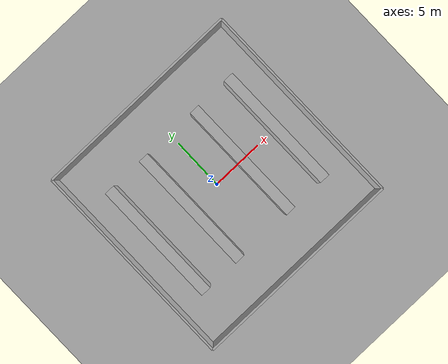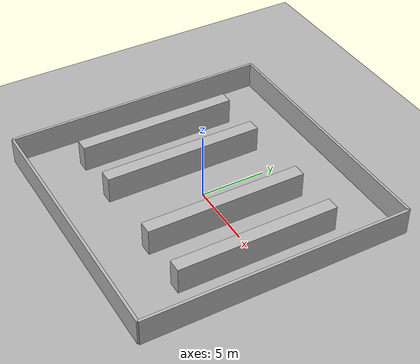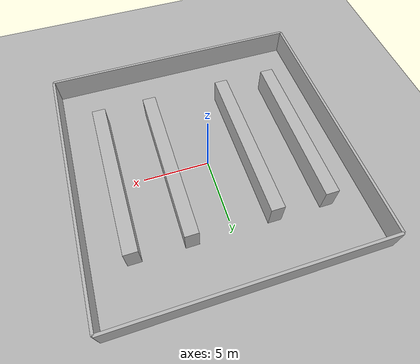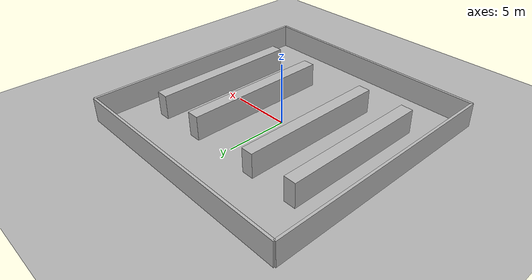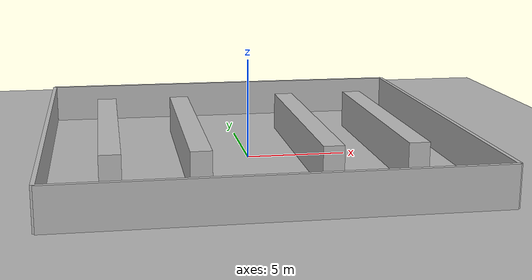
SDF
<?xml version="1.0" ?>
<sdf version="1.9">

  <world name="warehouse">

    <!-- PHYSICS                                               -->

    <physics name="default_physics" type="ode">
      <max_step_size>0.001</max_step_size>
      <real_time_factor>1.0</real_time_factor>
      <real_time_update_rate>1000</real_time_update_rate>
    </physics>

    <!-- Gazebo Sensors system -->
    <plugin
      filename="gz-sim-sensors-system"
      name="gz::sim::systems::Sensors">
    </plugin>

    <!-- Gazebo IMU system -->
    <plugin
      filename="gz-sim-imu-system"
      name="gz::sim::systems::Imu">
    </plugin>

    <!-- LIGHTING                                               -->

    <light name="sun" type="directional">
      <pose>-6 0 1 0 0 0</pose>

      <cast_shadows>true</cast_shadows>

      <diffuse>1 1 1 1</diffuse>
      <specular>0.5 0.5 0.5 1</specular>

      <attenuation>
        <range>1000</range>
        <constant>0.5</constant>
        <linear>0.01</linear>
        <quadratic>0.001</quadratic>
      </attenuation>

      <direction>-0.3 0.3 -1</direction>
    </light>

    <light name="warehouse_light_1" type="point">
      <pose>-6 0 1 0 0 0</pose>
      <diffuse>1 1 1 1</diffuse>
      <specular>0.3 0.3 0.3 1</specular>

      <attenuation>
        <range>30</range>
        <constant>0.5</constant>
        <linear>0.01</linear>
        <quadratic>0.001</quadratic>
      </attenuation>

      <cast_shadows>true</cast_shadows>
    </light>

    <!-- GROUND                                                 -->

    <model name="ground">

      <static>true</static>

      <link name="link">

        <collision name="collision">

          <geometry>
            <plane>
              <normal>0 0 1</normal>
              <size>30 30</size>
            </plane>
          </geometry>

        </collision>

        <visual name="visual">

          <geometry>
            <plane>
              <normal>0 0 1</normal>
              <size>30 30</size>
            </plane>
          </geometry>

          <material>
            <ambient>0.7 0.7 0.7 1</ambient>
            <diffuse>0.7 0.7 0.7 1</diffuse>
            <specular>0.1 0.1 0.1 1</specular>
          </material>

        </visual>

      </link>

    </model>

    <!-- NORTH WALL                                             -->

    <model name="wall_north">

      <static>true</static>

<pose>0 10 1 0 0 0</pose>
      <link name="link">

        <collision name="collision">

          <geometry>
            <box>
              <size>20 0.2 2</size>
            </box>
          </geometry>

        </collision>

        <visual name="visual">

          <geometry>
            <box>
              <size>20 0.2 2</size>
            </box>
          </geometry>

        </visual>

      </link>

    </model>

    <!-- SOUTH WALL                                             -->

    <model name="wall_south">

      <static>true</static>

     <pose>0 -10 1 0 0 0</pose>

      <link name="link">

        <collision name="collision">

          <geometry>
            <box>
              <size>20 0.2 2</size>
            </box>
          </geometry>

        </collision>

        <visual name="visual">

          <geometry>
            <box>
              <size>20 0.2 2</size>
            </box>
          </geometry>

        </visual>

      </link>

    </model>

    <!-- EAST WALL                                              -->

    <model name="wall_east">

      <static>true</static>

      <pose>10 0 1 0 0 0</pose>

      <link name="link">

        <collision name="collision">

          <geometry>
            <box>
              <size>0.2 20 2</size>
            </box>
          </geometry>

        </collision>

        <visual name="visual">

          <geometry>
            <box>
              <size>0.2 20 2</size>
            </box>
          </geometry>

        </visual>

      </link>

    </model>

    <!-- WEST WALL                                              -->

    <model name="wall_west">

      <static>true</static>

      <pose>-10 0 1 0 0 0</pose>

      <link name="link">

        <collision name="collision">

          <geometry>
            <box>
              <size>0.2 20 2</size>
            </box>
          </geometry>

        </collision>

        <visual name="visual">

          <geometry>
            <box>
              <size>0.2 20 2</size>
            </box>
          </geometry>

        </visual>

      </link>

    </model>

    <!-- WAREHOUSE SHELF ROW 1                                 -->

    <model name="shelf_row_1">

      <static>true</static>

      <pose>-7 0 1 0 0 0</pose>

      <link name="link">

        <collision name="collision">

          <geometry>
            <box>
              <size>1 12 2</size>
            </box>
          </geometry>

        </collision>

        <visual name="visual">

          <geometry>
            <box>
              <size>1 12 2</size>
            </box>
          </geometry>

        </visual>

      </link>

    </model>

    <!-- WAREHOUSE SHELF ROW 2                                 -->

    <model name="shelf_row_2">

      <static>true</static>

      <pose>-3 0 1 0 0 0</pose>

      <link name="link">

        <collision name="collision">

          <geometry>
            <box>
              <size>1 12 2</size>
            </box>
          </geometry>

        </collision>

        <visual name="visual">

          <geometry>
            <box>
              <size>1 12 2</size>
            </box>
          </geometry>

        </visual>

      </link>

    </model>

    <!-- WAREHOUSE SHELF ROW 3                                 -->

    <model name="shelf_row_3">

      <static>true</static>

      <pose>3 0 1 0 0 0</pose>

      <link name="link">

        <collision name="collision">

          <geometry>
            <box>
              <size>1 12 2</size>
            </box>
          </geometry>

        </collision>

        <visual name="visual">

          <geometry>
            <box>
              <size>1 12 2</size>
            </box>
          </geometry>

        </visual>

      </link>

    </model>

    <!-- WAREHOUSE SHELF ROW 4                                 -->

    <model name="shelf_row_4">

      <static>true</static>

      <pose>7 0 1 0 0 0</pose>

      <link name="link">

        <collision name="collision">

          <geometry>
            <box>
              <size>1 12 2</size>
            </box>
          </geometry>

        </collision>

        <visual name="visual">

          <geometry>
            <box>
              <size>1 12 2</size>
            </box>
          </geometry>

        </visual>

      </link>

    </model>

  </world>

</sdf>
